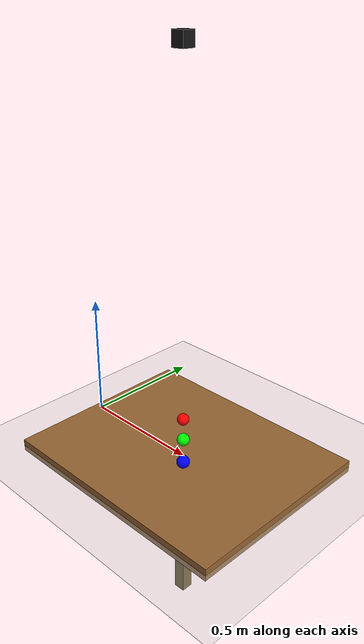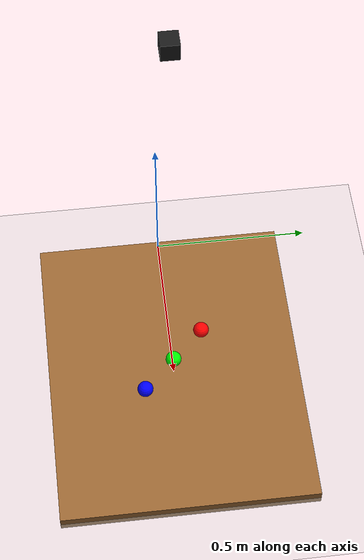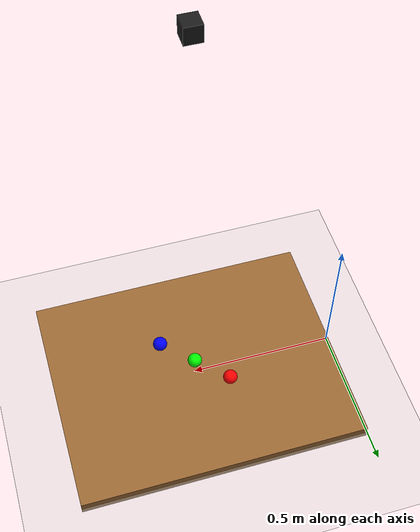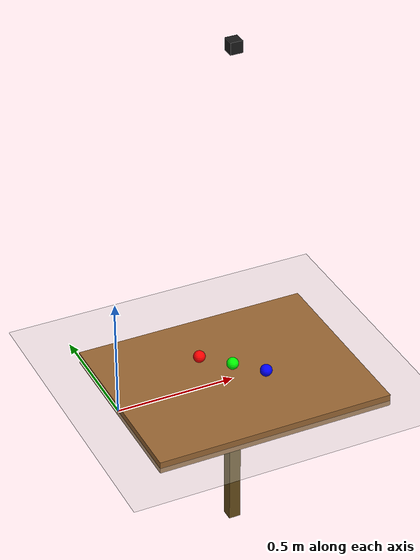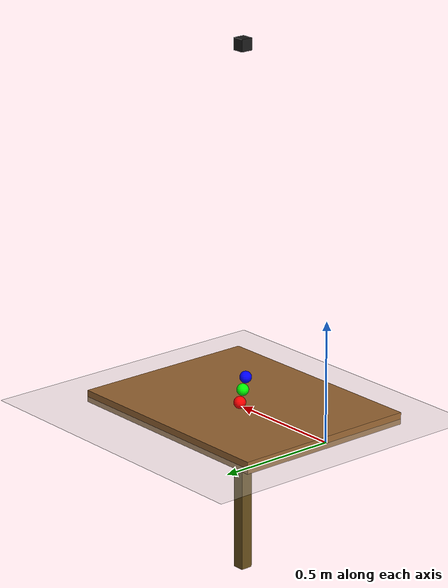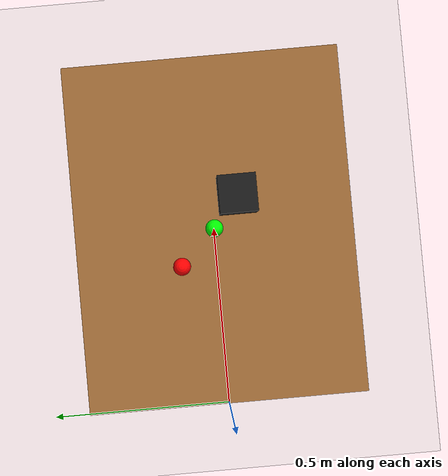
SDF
<?xml version="1.0"?>
<sdf version="1.6">
  <world name="pick_world">

    <!-- Lighting -->
    <include>
      <uri>model://sun</uri>
    </include>

    <!-- Ground -->
    <include>
      <uri>model://ground_plane</uri>
    </include>

    <!-- Table -->
    <model name="table">
      <static>true</static>
      <pose>0.5 0 0 0 0 0</pose>
      <link name="table_link">
        <visual name="table_visual">
          <geometry>
            <box>
              <size>1.0 0.8 0.05</size>
            </box>
          </geometry>
          <material>
            <ambient>0.6 0.4 0.2 1</ambient>
            <diffuse>0.6 0.4 0.2 1</diffuse>
          </material>
        </visual>
        <collision name="table_collision">
          <geometry>
            <box>
              <size>1.0 0.8 0.05</size>
            </box>
          </geometry>
        </collision>
      </link>
    </model>

    <!-- Table Leg -->
    <model name="table_support">
      <static>true</static>
      <pose>0.5 0 -0.35 0 0 0</pose>
      <link name="support_link">
        <visual name="support_visual">
          <geometry>
            <box>
              <size>0.05 0.05 0.7</size>
            </box>
          </geometry>
          <material>
            <ambient>0.4 0.3 0.1 1</ambient>
          </material>
        </visual>
        <collision name="support_collision">
          <geometry>
            <box>
              <size>0.05 0.05 0.7</size>
            </box>
          </geometry>
        </collision>
      </link>
    </model>

    <!-- Red Ball -->
    <model name="red_ball">
      <pose>0.4 0.1 0.075 0 0 0</pose>
      <link name="red_ball_link">
        <inertial>
          <mass>0.05</mass>
        </inertial>
        <visual name="red_ball_visual">
          <geometry>
            <sphere><radius>0.025</radius></sphere>
          </geometry>
          <material>
            <ambient>1 0 0 1</ambient>
            <diffuse>1 0 0 1</diffuse>
          </material>
        </visual>
        <collision name="red_ball_collision">
          <geometry>
            <sphere><radius>0.025</radius></sphere>
          </geometry>
        </collision>
      </link>
    </model>

    <!-- Green Ball -->
    <model name="green_ball">
      <pose>0.5 0.0 0.075 0 0 0</pose>
      <link name="green_ball_link">
        <inertial>
          <mass>0.05</mass>
        </inertial>
        <visual name="green_ball_visual">
          <geometry>
            <sphere><radius>0.025</radius></sphere>
          </geometry>
          <material>
            <ambient>0 1 0 1</ambient>
            <diffuse>0 1 0 1</diffuse>
          </material>
        </visual>
        <collision name="green_ball_collision">
          <geometry>
            <sphere><radius>0.025</radius></sphere>
          </geometry>
        </collision>
      </link>
    </model>

    <!-- Blue Ball -->
    <model name="blue_ball">
      <pose>0.6 -0.1 0.075 0 0 0</pose>
      <link name="blue_ball_link">
        <inertial>
          <mass>0.05</mass>
        </inertial>
        <visual name="blue_ball_visual">
          <geometry>
            <sphere><radius>0.025</radius></sphere>
          </geometry>
          <material>
            <ambient>0 0 1 1</ambient>
            <diffuse>0 0 1 1</diffuse>
          </material>
        </visual>
        <collision name="blue_ball_collision">
          <geometry>
            <sphere><radius>0.025</radius></sphere>
          </geometry>
        </collision>
      </link>
    </model>

    <!-- Overhead Camera -->
    <model name="overhead_camera">
      <static>true</static>
      <pose>0.5 0 1.5 0 1.5707 0</pose>
      <link name="camera_link">
        <visual name="camera_visual">
          <geometry>
            <box><size>0.05 0.05 0.05</size></box>
          </geometry>
          <material>
            <ambient>0.1 0.1 0.1 1</ambient>
          </material>
        </visual>
        <sensor name="camera" type="camera">
          <camera>
            <horizontal_fov>1.047</horizontal_fov>
            <image>
              <width>640</width>
              <height>480</height>
              <format>R8G8B8</format>
            </image>
            <clip>
              <near>0.1</near>
              <far>10</far>
            </clip>
          </camera>
          <always_on>true</always_on>
          <update_rate>30</update_rate>
          <plugin name="camera_plugin" filename="libgazebo_ros_camera.so">
            <ros>
              <namespace>/</namespace>
              <remapping>image_raw:=camera/image_raw</remapping>
              <remapping>camera_info:=camera/camera_info</remapping>
            </ros>
            <camera_name>overhead_camera</camera_name>
            <frame_name>camera_link</frame_name>
          </plugin>
        </sensor>
      </link>
    </model>

  </world>
</sdf>
